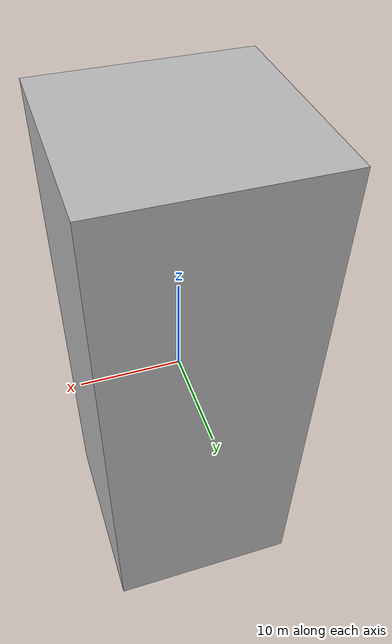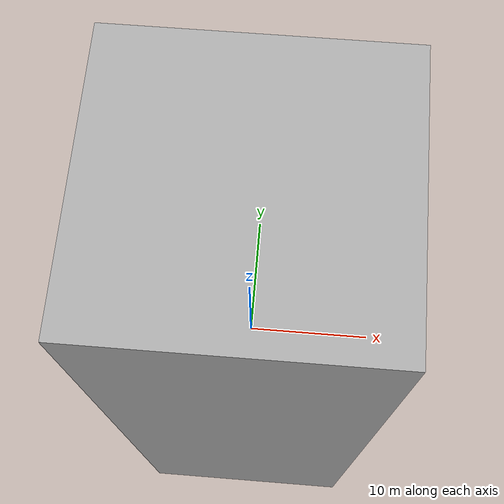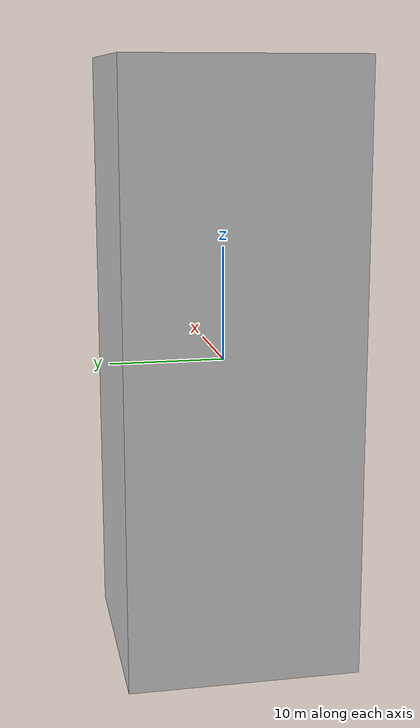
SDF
<?xml version="1.0" encoding="UTF-8"?>
<sdf version='1.5'>
  <model name="NSYBuilding">
    <static>true</static>
    <link name="building">
      <pose>0 0 0 0 0 0</pose>

      <collision name='collision'>
        <geometry>
          <box>
            <size>20 20 52</size>
          </box>
        </geometry>
      </collision>

      <visual name='visual'>
        <geometry>
          <box>
            <size>20 20 52</size>
          </box>
        </geometry>
      </visual>

    </link>
  </model>
</sdf>
